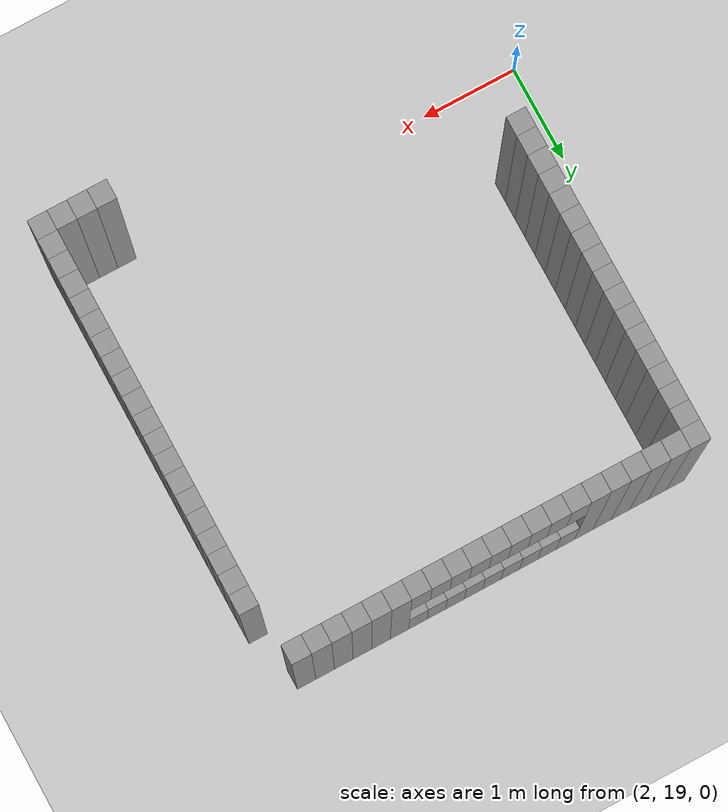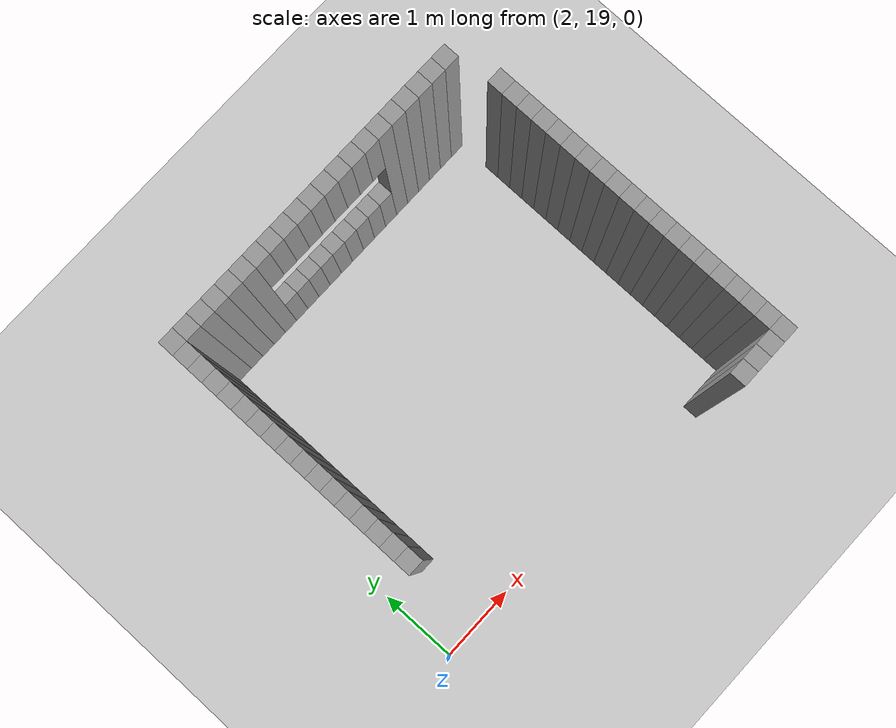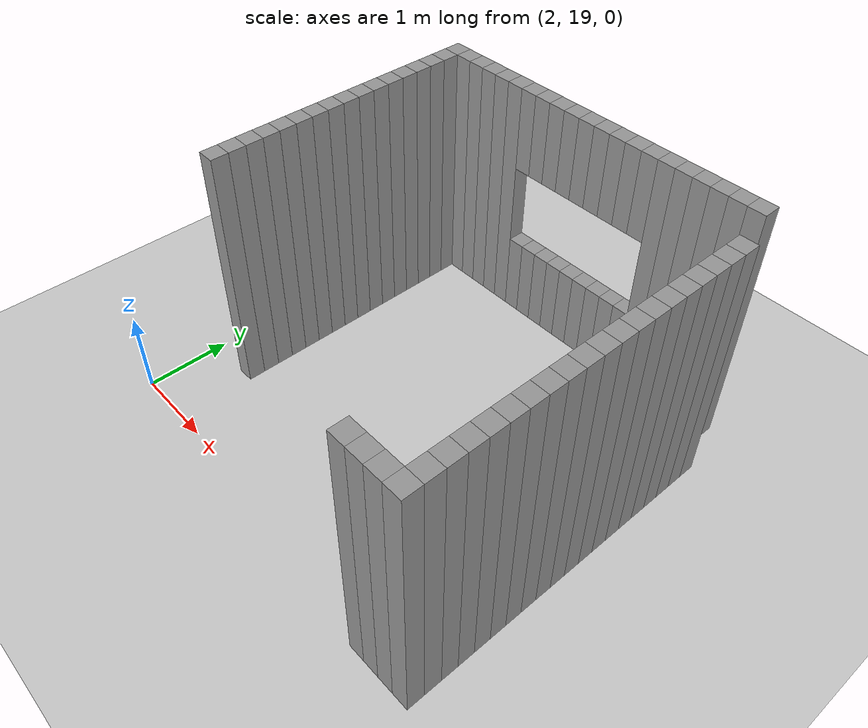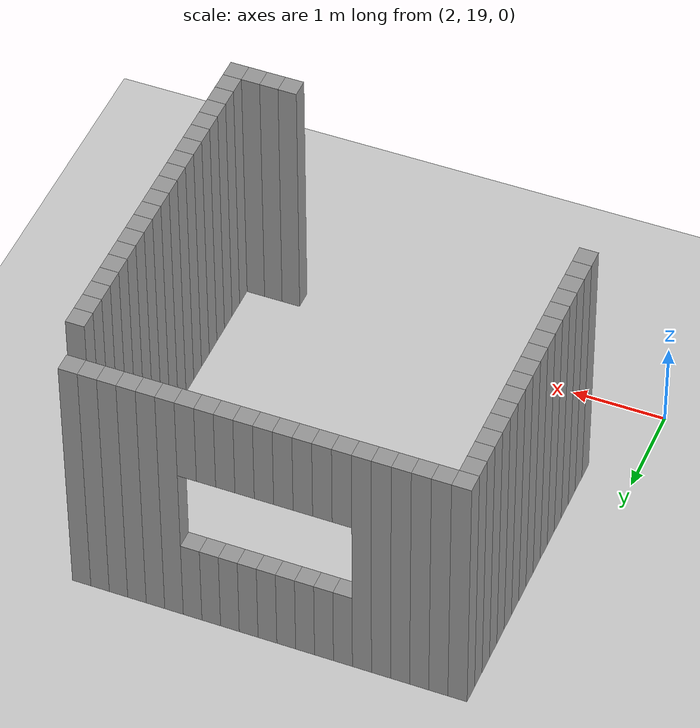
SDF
<sdf version="1.7">
 <world name="default">
  <model name="ground_plane">
   <static>1</static>
   <link name="link">
    <collision name="collision">
     <geometry><plane><normal>0 0 1</normal><size>100 100</size></plane></geometry>
     <surface>
      <contact><collide_bitmask>65535</collide_bitmask></contact>
      <friction><ode><mu>100</mu><mu2>50</mu2></ode></friction>
     </surface>
    </collision>
    <visual name="visual">
     <cast_shadows>0</cast_shadows>
     <geometry><plane><normal>0 0 1</normal><size>100 100</size></plane></geometry>
     <material>
      <script><uri>file://media/materials/scripts/gazebo.material</uri><name>Gazebo/Grey</name></script>
     </material>
    </visual>
   </link>
  </model>
  <model name="05222">
   <pose>-1 -1 0 0 -0 0</pose>
   <link name="Wall_908">
    <collision name="Wall_908_Collision">
     <geometry><box><size>0.2 0.2 3</size></box></geometry>
     <pose>0 0 1.5 0 -0 0</pose>
    </collision>
    <visual name="Wall_908_Visual">
     <pose>0 0 1.5 0 -0 0</pose>
     <geometry><box><size>0.2 0.2 3</size></box></geometry>
     <material>
      <script><uri>file://media/materials/scripts/gazebo.material</uri><name>Gazebo/Grey</name></script>
      <ambient>1 1 1 1</ambient>
     </material>
     <meta><layer>0</layer></meta>
    </visual>
    <pose>7.2 19.8 0 0 -0 0</pose>
   </link>
   <link name="Wall_909">
    <collision name="Wall_909_Collision">
     <geometry><box><size>0.2 0.2 3</size></box></geometry>
     <pose>0 0 1.5 0 -0 0</pose>
    </collision>
    <visual name="Wall_909_Visual">
     <pose>0 0 1.5 0 -0 0</pose>
     <geometry><box><size>0.2 0.2 3</size></box></geometry>
     <material>
      <script><uri>file://media/materials/scripts/gazebo.material</uri><name>Gazebo/Grey</name></script>
      <ambient>1 1 1 1</ambient>
     </material>
     <meta><layer>0</layer></meta>
    </visual>
    <pose>7.4 19.8 0 0 -0 0</pose>
   </link>
   <link name="Wall_910">
    <collision name="Wall_910_Collision">
     <geometry><box><size>0.2 0.2 3</size></box></geometry>
     <pose>0 0 1.5 0 -0 0</pose>
    </collision>
    <visual name="Wall_910_Visual">
     <pose>0 0 1.5 0 -0 0</pose>
     <geometry><box><size>0.2 0.2 3</size></box></geometry>
     <material>
      <script><uri>file://media/materials/scripts/gazebo.material</uri><name>Gazebo/Grey</name></script>
      <ambient>1 1 1 1</ambient>
     </material>
     <meta><layer>0</layer></meta>
    </visual>
    <pose>7.6000000000000005 19.8 0 0 -0 0</pose>
   </link>
   <link name="Wall_911">
    <collision name="Wall_911_Collision">
     <geometry><box><size>0.2 0.2 3</size></box></geometry>
     <pose>0 0 1.5 0 -0 0</pose>
    </collision>
    <visual name="Wall_911_Visual">
     <pose>0 0 1.5 0 -0 0</pose>
     <geometry><box><size>0.2 0.2 3</size></box></geometry>
     <material>
      <script><uri>file://media/materials/scripts/gazebo.material</uri><name>Gazebo/Grey</name></script>
      <ambient>1 1 1 1</ambient>
     </material>
     <meta><layer>0</layer></meta>
    </visual>
    <pose>7.800000000000001 19.8 0 0 -0 0</pose>
   </link>
   <link name="Wall_947">
    <collision name="Wall_947_Collision">
     <geometry><box><size>0.2 0.2 3</size></box></geometry>
     <pose>0 0 1.5 0 -0 0</pose>
    </collision>
    <visual name="Wall_947_Visual">
     <pose>0 0 1.5 0 -0 0</pose>
     <geometry><box><size>0.2 0.2 3</size></box></geometry>
     <material>
      <script><uri>file://media/materials/scripts/gazebo.material</uri><name>Gazebo/Grey</name></script>
      <ambient>1 1 1 1</ambient>
     </material>
     <meta><layer>0</layer></meta>
    </visual>
    <pose>7.800000000000001 20.0 0 0 -0 0</pose>
   </link>
   <link name="Wall_952">
    <collision name="Wall_952_Collision">
     <geometry><box><size>0.2 0.2 3</size></box></geometry>
     <pose>0 0 1.5 0 -0 0</pose>
    </collision>
    <visual name="Wall_952_Visual">
     <pose>0 0 1.5 0 -0 0</pose>
     <geometry><box><size>0.2 0.2 3</size></box></geometry>
     <material>
      <script><uri>file://media/materials/scripts/gazebo.material</uri><name>Gazebo/Grey</name></script>
      <ambient>1 1 1 1</ambient>
     </material>
     <meta><layer>0</layer></meta>
    </visual>
    <pose>7.800000000000001 20.200000000000003 0 0 -0 0</pose>
   </link>
   <link name="Wall_958">
    <collision name="Wall_958_Collision">
     <geometry><box><size>0.2 0.2 3</size></box></geometry>
     <pose>0 0 1.5 0 -0 0</pose>
    </collision>
    <visual name="Wall_958_Visual">
     <pose>0 0 1.5 0 -0 0</pose>
     <geometry><box><size>0.2 0.2 3</size></box></geometry>
     <material>
      <script><uri>file://media/materials/scripts/gazebo.material</uri><name>Gazebo/Grey</name></script>
      <ambient>1 1 1 1</ambient>
     </material>
     <meta><layer>0</layer></meta>
    </visual>
    <pose>7.800000000000001 20.400000000000002 0 0 -0 0</pose>
   </link>
   <link name="Wall_964">
    <collision name="Wall_964_Collision">
     <geometry><box><size>0.2 0.2 3</size></box></geometry>
     <pose>0 0 1.5 0 -0 0</pose>
    </collision>
    <visual name="Wall_964_Visual">
     <pose>0 0 1.5 0 -0 0</pose>
     <geometry><box><size>0.2 0.2 3</size></box></geometry>
     <material>
      <script><uri>file://media/materials/scripts/gazebo.material</uri><name>Gazebo/Grey</name></script>
      <ambient>1 1 1 1</ambient>
     </material>
     <meta><layer>0</layer></meta>
    </visual>
    <pose>7.800000000000001 20.6 0 0 -0 0</pose>
   </link>
   <link name="Wall_970">
    <collision name="Wall_970_Collision">
     <geometry><box><size>0.2 0.2 3</size></box></geometry>
     <pose>0 0 1.5 0 -0 0</pose>
    </collision>
    <visual name="Wall_970_Visual">
     <pose>0 0 1.5 0 -0 0</pose>
     <geometry><box><size>0.2 0.2 3</size></box></geometry>
     <material>
      <script><uri>file://media/materials/scripts/gazebo.material</uri><name>Gazebo/Grey</name></script>
      <ambient>1 1 1 1</ambient>
     </material>
     <meta><layer>0</layer></meta>
    </visual>
    <pose>7.800000000000001 20.8 0 0 -0 0</pose>
   </link>
   <link name="Wall_975">
    <collision name="Wall_975_Collision">
     <geometry><box><size>0.2 0.2 3</size></box></geometry>
     <pose>0 0 1.5 0 -0 0</pose>
    </collision>
    <visual name="Wall_975_Visual">
     <pose>0 0 1.5 0 -0 0</pose>
     <geometry><box><size>0.2 0.2 3</size></box></geometry>
     <material>
      <script><uri>file://media/materials/scripts/gazebo.material</uri><name>Gazebo/Grey</name></script>
      <ambient>1 1 1 1</ambient>
     </material>
     <meta><layer>0</layer></meta>
    </visual>
    <pose>3.6 21.0 0 0 -0 0</pose>
   </link>
   <link name="Wall_976">
    <collision name="Wall_976_Collision">
     <geometry><box><size>0.2 0.2 3</size></box></geometry>
     <pose>0 0 1.5 0 -0 0</pose>
    </collision>
    <visual name="Wall_976_Visual">
     <pose>0 0 1.5 0 -0 0</pose>
     <geometry><box><size>0.2 0.2 3</size></box></geometry>
     <material>
      <script><uri>file://media/materials/scripts/gazebo.material</uri><name>Gazebo/Grey</name></script>
      <ambient>1 1 1 1</ambient>
     </material>
     <meta><layer>0</layer></meta>
    </visual>
    <pose>7.800000000000001 21.0 0 0 -0 0</pose>
   </link>
   <link name="Wall_981">
    <collision name="Wall_981_Collision">
     <geometry><box><size>0.2 0.2 3</size></box></geometry>
     <pose>0 0 1.5 0 -0 0</pose>
    </collision>
    <visual name="Wall_981_Visual">
     <pose>0 0 1.5 0 -0 0</pose>
     <geometry><box><size>0.2 0.2 3</size></box></geometry>
     <material>
      <script><uri>file://media/materials/scripts/gazebo.material</uri><name>Gazebo/Grey</name></script>
      <ambient>1 1 1 1</ambient>
     </material>
     <meta><layer>0</layer></meta>
    </visual>
    <pose>3.6 21.200000000000003 0 0 -0 0</pose>
   </link>
   <link name="Wall_982">
    <collision name="Wall_982_Collision">
     <geometry><box><size>0.2 0.2 3</size></box></geometry>
     <pose>0 0 1.5 0 -0 0</pose>
    </collision>
    <visual name="Wall_982_Visual">
     <pose>0 0 1.5 0 -0 0</pose>
     <geometry><box><size>0.2 0.2 3</size></box></geometry>
     <material>
      <script><uri>file://media/materials/scripts/gazebo.material</uri><name>Gazebo/Grey</name></script>
      <ambient>1 1 1 1</ambient>
     </material>
     <meta><layer>0</layer></meta>
    </visual>
    <pose>7.800000000000001 21.200000000000003 0 0 -0 0</pose>
   </link>
   <link name="Wall_988">
    <collision name="Wall_988_Collision">
     <geometry><box><size>0.2 0.2 3</size></box></geometry>
     <pose>0 0 1.5 0 -0 0</pose>
    </collision>
    <visual name="Wall_988_Visual">
     <pose>0 0 1.5 0 -0 0</pose>
     <geometry><box><size>0.2 0.2 3</size></box></geometry>
     <material>
      <script><uri>file://media/materials/scripts/gazebo.material</uri><name>Gazebo/Grey</name></script>
      <ambient>1 1 1 1</ambient>
     </material>
     <meta><layer>0</layer></meta>
    </visual>
    <pose>3.6 21.400000000000002 0 0 -0 0</pose>
   </link>
   <link name="Wall_989">
    <collision name="Wall_989_Collision">
     <geometry><box><size>0.2 0.2 3</size></box></geometry>
     <pose>0 0 1.5 0 -0 0</pose>
    </collision>
    <visual name="Wall_989_Visual">
     <pose>0 0 1.5 0 -0 0</pose>
     <geometry><box><size>0.2 0.2 3</size></box></geometry>
     <material>
      <script><uri>file://media/materials/scripts/gazebo.material</uri><name>Gazebo/Grey</name></script>
      <ambient>1 1 1 1</ambient>
     </material>
     <meta><layer>0</layer></meta>
    </visual>
    <pose>7.800000000000001 21.400000000000002 0 0 -0 0</pose>
   </link>
   <link name="Wall_995">
    <collision name="Wall_995_Collision">
     <geometry><box><size>0.2 0.2 3</size></box></geometry>
     <pose>0 0 1.5 0 -0 0</pose>
    </collision>
    <visual name="Wall_995_Visual">
     <pose>0 0 1.5 0 -0 0</pose>
     <geometry><box><size>0.2 0.2 3</size></box></geometry>
     <material>
      <script><uri>file://media/materials/scripts/gazebo.material</uri><name>Gazebo/Grey</name></script>
      <ambient>1 1 1 1</ambient>
     </material>
     <meta><layer>0</layer></meta>
    </visual>
    <pose>3.6 21.6 0 0 -0 0</pose>
   </link>
   <link name="Wall_996">
    <collision name="Wall_996_Collision">
     <geometry><box><size>0.2 0.2 3</size></box></geometry>
     <pose>0 0 1.5 0 -0 0</pose>
    </collision>
    <visual name="Wall_996_Visual">
     <pose>0 0 1.5 0 -0 0</pose>
     <geometry><box><size>0.2 0.2 3</size></box></geometry>
     <material>
      <script><uri>file://media/materials/scripts/gazebo.material</uri><name>Gazebo/Grey</name></script>
      <ambient>1 1 1 1</ambient>
     </material>
     <meta><layer>0</layer></meta>
    </visual>
    <pose>7.800000000000001 21.6 0 0 -0 0</pose>
   </link>
   <link name="Wall_1001">
    <collision name="Wall_1001_Collision">
     <geometry><box><size>0.2 0.2 3</size></box></geometry>
     <pose>0 0 1.5 0 -0 0</pose>
    </collision>
    <visual name="Wall_1001_Visual">
     <pose>0 0 1.5 0 -0 0</pose>
     <geometry><box><size>0.2 0.2 3</size></box></geometry>
     <material>
      <script><uri>file://media/materials/scripts/gazebo.material</uri><name>Gazebo/Grey</name></script>
      <ambient>1 1 1 1</ambient>
     </material>
     <meta><layer>0</layer></meta>
    </visual>
    <pose>3.6 21.8 0 0 -0 0</pose>
   </link>
   <link name="Wall_1002">
    <collision name="Wall_1002_Collision">
     <geometry><box><size>0.2 0.2 3</size></box></geometry>
     <pose>0 0 1.5 0 -0 0</pose>
    </collision>
    <visual name="Wall_1002_Visual">
     <pose>0 0 1.5 0 -0 0</pose>
     <geometry><box><size>0.2 0.2 3</size></box></geometry>
     <material>
      <script><uri>file://media/materials/scripts/gazebo.material</uri><name>Gazebo/Grey</name></script>
      <ambient>1 1 1 1</ambient>
     </material>
     <meta><layer>0</layer></meta>
    </visual>
    <pose>7.800000000000001 21.8 0 0 -0 0</pose>
   </link>
   <link name="Wall_1007">
    <collision name="Wall_1007_Collision">
     <geometry><box><size>0.2 0.2 3</size></box></geometry>
     <pose>0 0 1.5 0 -0 0</pose>
    </collision>
    <visual name="Wall_1007_Visual">
     <pose>0 0 1.5 0 -0 0</pose>
     <geometry><box><size>0.2 0.2 3</size></box></geometry>
     <material>
      <script><uri>file://media/materials/scripts/gazebo.material</uri><name>Gazebo/Grey</name></script>
      <ambient>1 1 1 1</ambient>
     </material>
     <meta><layer>0</layer></meta>
    </visual>
    <pose>3.6 22.0 0 0 -0 0</pose>
   </link>
   <link name="Wall_1008">
    <collision name="Wall_1008_Collision">
     <geometry><box><size>0.2 0.2 3</size></box></geometry>
     <pose>0 0 1.5 0 -0 0</pose>
    </collision>
    <visual name="Wall_1008_Visual">
     <pose>0 0 1.5 0 -0 0</pose>
     <geometry><box><size>0.2 0.2 3</size></box></geometry>
     <material>
      <script><uri>file://media/materials/scripts/gazebo.material</uri><name>Gazebo/Grey</name></script>
      <ambient>1 1 1 1</ambient>
     </material>
     <meta><layer>0</layer></meta>
    </visual>
    <pose>7.800000000000001 22.0 0 0 -0 0</pose>
   </link>
   <link name="Wall_1013">
    <collision name="Wall_1013_Collision">
     <geometry><box><size>0.2 0.2 3</size></box></geometry>
     <pose>0 0 1.5 0 -0 0</pose>
    </collision>
    <visual name="Wall_1013_Visual">
     <pose>0 0 1.5 0 -0 0</pose>
     <geometry><box><size>0.2 0.2 3</size></box></geometry>
     <material>
      <script><uri>file://media/materials/scripts/gazebo.material</uri><name>Gazebo/Grey</name></script>
      <ambient>1 1 1 1</ambient>
     </material>
     <meta><layer>0</layer></meta>
    </visual>
    <pose>3.6 22.200000000000003 0 0 -0 0</pose>
   </link>
   <link name="Wall_1014">
    <collision name="Wall_1014_Collision">
     <geometry><box><size>0.2 0.2 3</size></box></geometry>
     <pose>0 0 1.5 0 -0 0</pose>
    </collision>
    <visual name="Wall_1014_Visual">
     <pose>0 0 1.5 0 -0 0</pose>
     <geometry><box><size>0.2 0.2 3</size></box></geometry>
     <material>
      <script><uri>file://media/materials/scripts/gazebo.material</uri><name>Gazebo/Grey</name></script>
      <ambient>1 1 1 1</ambient>
     </material>
     <meta><layer>0</layer></meta>
    </visual>
    <pose>7.800000000000001 22.200000000000003 0 0 -0 0</pose>
   </link>
   <link name="Wall_1019">
    <collision name="Wall_1019_Collision">
     <geometry><box><size>0.2 0.2 3</size></box></geometry>
     <pose>0 0 1.5 0 -0 0</pose>
    </collision>
    <visual name="Wall_1019_Visual">
     <pose>0 0 1.5 0 -0 0</pose>
     <geometry><box><size>0.2 0.2 3</size></box></geometry>
     <material>
      <script><uri>file://media/materials/scripts/gazebo.material</uri><name>Gazebo/Grey</name></script>
      <ambient>1 1 1 1</ambient>
     </material>
     <meta><layer>0</layer></meta>
    </visual>
    <pose>3.6 22.400000000000002 0 0 -0 0</pose>
   </link>
   <link name="Wall_1020">
    <collision name="Wall_1020_Collision">
     <geometry><box><size>0.2 0.2 3</size></box></geometry>
     <pose>0 0 1.5 0 -0 0</pose>
    </collision>
    <visual name="Wall_1020_Visual">
     <pose>0 0 1.5 0 -0 0</pose>
     <geometry><box><size>0.2 0.2 3</size></box></geometry>
     <material>
      <script><uri>file://media/materials/scripts/gazebo.material</uri><name>Gazebo/Grey</name></script>
      <ambient>1 1 1 1</ambient>
     </material>
     <meta><layer>0</layer></meta>
    </visual>
    <pose>7.800000000000001 22.400000000000002 0 0 -0 0</pose>
   </link>
   <link name="Wall_1025">
    <collision name="Wall_1025_Collision">
     <geometry><box><size>0.2 0.2 3</size></box></geometry>
     <pose>0 0 1.5 0 -0 0</pose>
    </collision>
    <visual name="Wall_1025_Visual">
     <pose>0 0 1.5 0 -0 0</pose>
     <geometry><box><size>0.2 0.2 3</size></box></geometry>
     <material>
      <script><uri>file://media/materials/scripts/gazebo.material</uri><name>Gazebo/Grey</name></script>
      <ambient>1 1 1 1</ambient>
     </material>
     <meta><layer>0</layer></meta>
    </visual>
    <pose>3.6 22.6 0 0 -0 0</pose>
   </link>
   <link name="Wall_1026">
    <collision name="Wall_1026_Collision">
     <geometry><box><size>0.2 0.2 3</size></box></geometry>
     <pose>0 0 1.5 0 -0 0</pose>
    </collision>
    <visual name="Wall_1026_Visual">
     <pose>0 0 1.5 0 -0 0</pose>
     <geometry><box><size>0.2 0.2 3</size></box></geometry>
     <material>
      <script><uri>file://media/materials/scripts/gazebo.material</uri><name>Gazebo/Grey</name></script>
      <ambient>1 1 1 1</ambient>
     </material>
     <meta><layer>0</layer></meta>
    </visual>
    <pose>7.800000000000001 22.6 0 0 -0 0</pose>
   </link>
   <link name="Wall_1031">
    <collision name="Wall_1031_Collision">
     <geometry><box><size>0.2 0.2 3</size></box></geometry>
     <pose>0 0 1.5 0 -0 0</pose>
    </collision>
    <visual name="Wall_1031_Visual">
     <pose>0 0 1.5 0 -0 0</pose>
     <geometry><box><size>0.2 0.2 3</size></box></geometry>
     <material>
      <script><uri>file://media/materials/scripts/gazebo.material</uri><name>Gazebo/Grey</name></script>
      <ambient>1 1 1 1</ambient>
     </material>
     <meta><layer>0</layer></meta>
    </visual>
    <pose>3.6 22.8 0 0 -0 0</pose>
   </link>
   <link name="Wall_1032">
    <collision name="Wall_1032_Collision">
     <geometry><box><size>0.2 0.2 3</size></box></geometry>
     <pose>0 0 1.5 0 -0 0</pose>
    </collision>
    <visual name="Wall_1032_Visual">
     <pose>0 0 1.5 0 -0 0</pose>
     <geometry><box><size>0.2 0.2 3</size></box></geometry>
     <material>
      <script><uri>file://media/materials/scripts/gazebo.material</uri><name>Gazebo/Grey</name></script>
      <ambient>1 1 1 1</ambient>
     </material>
     <meta><layer>0</layer></meta>
    </visual>
    <pose>7.800000000000001 22.8 0 0 -0 0</pose>
   </link>
   <link name="Wall_1037">
    <collision name="Wall_1037_Collision">
     <geometry><box><size>0.2 0.2 3</size></box></geometry>
     <pose>0 0 1.5 0 -0 0</pose>
    </collision>
    <visual name="Wall_1037_Visual">
     <pose>0 0 1.5 0 -0 0</pose>
     <geometry><box><size>0.2 0.2 3</size></box></geometry>
     <material>
      <script><uri>file://media/materials/scripts/gazebo.material</uri><name>Gazebo/Grey</name></script>
      <ambient>1 1 1 1</ambient>
     </material>
     <meta><layer>0</layer></meta>
    </visual>
    <pose>3.6 23.0 0 0 -0 0</pose>
   </link>
   <link name="Wall_1038">
    <collision name="Wall_1038_Collision">
     <geometry><box><size>0.2 0.2 3</size></box></geometry>
     <pose>0 0 1.5 0 -0 0</pose>
    </collision>
    <visual name="Wall_1038_Visual">
     <pose>0 0 1.5 0 -0 0</pose>
     <geometry><box><size>0.2 0.2 3</size></box></geometry>
     <material>
      <script><uri>file://media/materials/scripts/gazebo.material</uri><name>Gazebo/Grey</name></script>
      <ambient>1 1 1 1</ambient>
     </material>
     <meta><layer>0</layer></meta>
    </visual>
    <pose>7.800000000000001 23.0 0 0 -0 0</pose>
   </link>
   <link name="Wall_1043">
    <collision name="Wall_1043_Collision">
     <geometry><box><size>0.2 0.2 3</size></box></geometry>
     <pose>0 0 1.5 0 -0 0</pose>
    </collision>
    <visual name="Wall_1043_Visual">
     <pose>0 0 1.5 0 -0 0</pose>
     <geometry><box><size>0.2 0.2 3</size></box></geometry>
     <material>
      <script><uri>file://media/materials/scripts/gazebo.material</uri><name>Gazebo/Grey</name></script>
      <ambient>1 1 1 1</ambient>
     </material>
     <meta><layer>0</layer></meta>
    </visual>
    <pose>3.6 23.200000000000003 0 0 -0 0</pose>
   </link>
   <link name="Wall_1044">
    <collision name="Wall_1044_Collision">
     <geometry><box><size>0.2 0.2 3</size></box></geometry>
     <pose>0 0 1.5 0 -0 0</pose>
    </collision>
    <visual name="Wall_1044_Visual">
     <pose>0 0 1.5 0 -0 0</pose>
     <geometry><box><size>0.2 0.2 3</size></box></geometry>
     <material>
      <script><uri>file://media/materials/scripts/gazebo.material</uri><name>Gazebo/Grey</name></script>
      <ambient>1 1 1 1</ambient>
     </material>
     <meta><layer>0</layer></meta>
    </visual>
    <pose>7.800000000000001 23.200000000000003 0 0 -0 0</pose>
   </link>
   <link name="Wall_1048">
    <collision name="Wall_1048_Collision">
     <geometry><box><size>0.2 0.2 3</size></box></geometry>
     <pose>0 0 1.5 0 -0 0</pose>
    </collision>
    <visual name="Wall_1048_Visual">
     <pose>0 0 1.5 0 -0 0</pose>
     <geometry><box><size>0.2 0.2 3</size></box></geometry>
     <material>
      <script><uri>file://media/materials/scripts/gazebo.material</uri><name>Gazebo/Grey</name></script>
      <ambient>1 1 1 1</ambient>
     </material>
     <meta><layer>0</layer></meta>
    </visual>
    <pose>3.6 23.400000000000002 0 0 -0 0</pose>
   </link>
   <link name="Wall_1049">
    <collision name="Wall_1049_Collision">
     <geometry><box><size>0.2 0.2 3</size></box></geometry>
     <pose>0 0 1.5 0 -0 0</pose>
    </collision>
    <visual name="Wall_1049_Visual">
     <pose>0 0 1.5 0 -0 0</pose>
     <geometry><box><size>0.2 0.2 3</size></box></geometry>
     <material>
      <script><uri>file://media/materials/scripts/gazebo.material</uri><name>Gazebo/Grey</name></script>
      <ambient>1 1 1 1</ambient>
     </material>
     <meta><layer>0</layer></meta>
    </visual>
    <pose>7.800000000000001 23.400000000000002 0 0 -0 0</pose>
   </link>
   <link name="Wall_1053">
    <collision name="Wall_1053_Collision">
     <geometry><box><size>0.2 0.2 3</size></box></geometry>
     <pose>0 0 1.5 0 -0 0</pose>
    </collision>
    <visual name="Wall_1053_Visual">
     <pose>0 0 1.5 0 -0 0</pose>
     <geometry><box><size>0.2 0.2 3</size></box></geometry>
     <material>
      <script><uri>file://media/materials/scripts/gazebo.material</uri><name>Gazebo/Grey</name></script>
      <ambient>1 1 1 1</ambient>
     </material>
     <meta><layer>0</layer></meta>
    </visual>
    <pose>3.6 23.6 0 0 -0 0</pose>
   </link>
   <link name="Wall_1054">
    <collision name="Wall_1054_Collision">
     <geometry><box><size>0.2 0.2 3</size></box></geometry>
     <pose>0 0 1.5 0 -0 0</pose>
    </collision>
    <visual name="Wall_1054_Visual">
     <pose>0 0 1.5 0 -0 0</pose>
     <geometry><box><size>0.2 0.2 3</size></box></geometry>
     <material>
      <script><uri>file://media/materials/scripts/gazebo.material</uri><name>Gazebo/Grey</name></script>
      <ambient>1 1 1 1</ambient>
     </material>
     <meta><layer>0</layer></meta>
    </visual>
    <pose>7.800000000000001 23.6 0 0 -0 0</pose>
   </link>
   <link name="Wall_1058">
    <collision name="Wall_1058_Collision">
     <geometry><box><size>0.2 0.2 3</size></box></geometry>
     <pose>0 0 1.5 0 -0 0</pose>
    </collision>
    <visual name="Wall_1058_Visual">
     <pose>0 0 1.5 0 -0 0</pose>
     <geometry><box><size>0.2 0.2 3</size></box></geometry>
     <material>
      <script><uri>file://media/materials/scripts/gazebo.material</uri><name>Gazebo/Grey</name></script>
      <ambient>1 1 1 1</ambient>
     </material>
     <meta><layer>0</layer></meta>
    </visual>
    <pose>3.6 23.8 0 0 -0 0</pose>
   </link>
   <link name="Wall_1063">
    <collision name="Wall_1063_Collision">
     <geometry><box><size>0.2 0.2 3</size></box></geometry>
     <pose>0 0 1.5 0 -0 0</pose>
    </collision>
    <visual name="Wall_1063_Visual">
     <pose>0 0 1.5 0 -0 0</pose>
     <geometry><box><size>0.2 0.2 3</size></box></geometry>
     <material>
      <script><uri>file://media/materials/scripts/gazebo.material</uri><name>Gazebo/Grey</name></script>
      <ambient>1 1 1 1</ambient>
     </material>
     <meta><layer>0</layer></meta>
    </visual>
    <pose>3.6 24.0 0 0 -0 0</pose>
   </link>
   <link name="Wall_1095">
    <collision name="Wall_1095_Collision">
     <geometry><box><size>0.2 0.2 3</size></box></geometry>
     <pose>0 0 1.5 0 -0 0</pose>
    </collision>
    <visual name="Wall_1095_Visual">
     <pose>0 0 1.5 0 -0 0</pose>
     <geometry><box><size>0.2 0.2 3</size></box></geometry>
     <material>
      <script><uri>file://media/materials/scripts/gazebo.material</uri><name>Gazebo/Grey</name></script>
      <ambient>1 1 1 1</ambient>
     </material>
     <meta><layer>0</layer></meta>
    </visual>
    <pose>3.6 24.200000000000003 0 0 -0 0</pose>
   </link>
   <link name="Wall_1096">
    <collision name="Wall_1096_Collision">
     <geometry><box><size>0.2 0.2 3</size></box></geometry>
     <pose>0 0 1.5 0 -0 0</pose>
    </collision>
    <visual name="Wall_1096_Visual">
     <pose>0 0 1.5 0 -0 0</pose>
     <geometry><box><size>0.2 0.2 3</size></box></geometry>
     <material>
      <script><uri>file://media/materials/scripts/gazebo.material</uri><name>Gazebo/Grey</name></script>
      <ambient>1 1 1 1</ambient>
     </material>
     <meta><layer>0</layer></meta>
    </visual>
    <pose>3.8000000000000003 24.200000000000003 0 0 -0 0</pose>
   </link>
   <link name="Wall_1097">
    <collision name="Wall_1097_Collision">
     <geometry><box><size>0.2 0.2 3</size></box></geometry>
     <pose>0 0 1.5 0 -0 0</pose>
    </collision>
    <visual name="Wall_1097_Visual">
     <pose>0 0 1.5 0 -0 0</pose>
     <geometry><box><size>0.2 0.2 3</size></box></geometry>
     <material>
      <script><uri>file://media/materials/scripts/gazebo.material</uri><name>Gazebo/Grey</name></script>
      <ambient>1 1 1 1</ambient>
     </material>
     <meta><layer>0</layer></meta>
    </visual>
    <pose>4.0 24.200000000000003 0 0 -0 0</pose>
   </link>
   <link name="Wall_1098">
    <collision name="Wall_1098_Collision">
     <geometry><box><size>0.2 0.2 3</size></box></geometry>
     <pose>0 0 1.5 0 -0 0</pose>
    </collision>
    <visual name="Wall_1098_Visual">
     <pose>0 0 1.5 0 -0 0</pose>
     <geometry><box><size>0.2 0.2 3</size></box></geometry>
     <material>
      <script><uri>file://media/materials/scripts/gazebo.material</uri><name>Gazebo/Grey</name></script>
      <ambient>1 1 1 1</ambient>
     </material>
     <meta><layer>0</layer></meta>
    </visual>
    <pose>4.2 24.200000000000003 0 0 -0 0</pose>
   </link>
   <link name="Wall_1099">
    <collision name="Wall_1099_Collision">
     <geometry><box><size>0.2 0.2 3</size></box></geometry>
     <pose>0 0 1.5 0 -0 0</pose>
    </collision>
    <visual name="Wall_1099_Visual">
     <pose>0 0 1.5 0 -0 0</pose>
     <geometry><box><size>0.2 0.2 3</size></box></geometry>
     <material>
      <script><uri>file://media/materials/scripts/gazebo.material</uri><name>Gazebo/Grey</name></script>
      <ambient>1 1 1 1</ambient>
     </material>
     <meta><layer>0</layer></meta>
    </visual>
    <pose>4.4 24.200000000000003 0 0 -0 0</pose>
   </link>
   <link name="Wall_1100">
    <collision name="Wall_1100_Collision">
     <geometry><box><size>0.2 0.2 3</size></box></geometry>
     <pose>0 0 1.5 0 -0 0</pose>
    </collision>
    <visual name="Wall_1100_Visual">
     <pose>0 0 1.5 0 -0 0</pose>
     <geometry><box><size>0.2 0.2 3</size></box></geometry>
     <material>
      <script><uri>file://media/materials/scripts/gazebo.material</uri><name>Gazebo/Grey</name></script>
      <ambient>1 1 1 1</ambient>
     </material>
     <meta><layer>0</layer></meta>
    </visual>
    <pose>4.6000000000000005 24.200000000000003 0 0 -0 0</pose>
   </link>
   <link name="Wall_1101">
    <collision name="Wall_1101_Collision">
     <geometry><box><size>0.2 0.2 1.0</size></box></geometry>
     <pose>0 0 0.5 0 -0 0</pose>
    </collision>
    <visual name="Wall_1101_Visual">
     <pose>0 0 0.5 0 -0 0</pose>
     <geometry><box><size>0.2 0.2 1.0</size></box></geometry>
     <material>
      <script><uri>file://media/materials/scripts/gazebo.material</uri><name>Gazebo/Grey</name></script>
      <ambient>1 1 1 1</ambient>
     </material>
     <meta><layer>0</layer></meta>
    </visual>
    <pose>4.800000000000001 24.200000000000003 0 0 -0 0</pose>
   </link>
   <link name="Wall_1102">
    <collision name="Wall_1102_Collision">
     <geometry><box><size>0.2 0.2 1.0</size></box></geometry>
     <pose>0 0 2.5 0 -0 0</pose>
    </collision>
    <visual name="Wall_1102_Visual">
     <pose>0 0 2.5 0 -0 0</pose>
     <geometry><box><size>0.2 0.2 1.0</size></box></geometry>
     <material>
      <script><uri>file://media/materials/scripts/gazebo.material</uri><name>Gazebo/Grey</name></script>
      <ambient>1 1 1 1</ambient>
     </material>
     <meta><layer>0</layer></meta>
    </visual>
    <pose>4.800000000000001 24.200000000000003 0 0 -0 0</pose>
   </link>
   <link name="Window_1101">
    <collision name="Window_1101_Collision">
     <geometry><box><size>0.2 0.2 1.0</size></box></geometry>
     <pose>0 0 1.5 0 -0 0</pose>
    </collision>
    <visual name="Wall_1102_Visual">
     <pose>0 0 2.5 0 -0 0</pose>
     <geometry><box><size>0.2 0.2 1.0</size></box></geometry>
     <material>
      <script><uri>file://media/materials/scripts/gazebo.material</uri><name>Gazebo/Grey</name></script>
      <ambient>1 1 1 1</ambient>
     </material>
     <meta><layer>0</layer></meta>
    </visual>
    <pose>4.800000000000001 24.200000000000003 0 0 -0 0</pose>
   </link>
   <link name="Wall_1103">
    <collision name="Wall_1103_Collision">
     <geometry><box><size>0.2 0.2 1.0</size></box></geometry>
     <pose>0 0 0.5 0 -0 0</pose>
    </collision>
    <visual name="Wall_1103_Visual">
     <pose>0 0 0.5 0 -0 0</pose>
     <geometry><box><size>0.2 0.2 1.0</size></box></geometry>
     <material>
      <script><uri>file://media/materials/scripts/gazebo.material</uri><name>Gazebo/Grey</name></script>
      <ambient>1 1 1 1</ambient>
     </material>
     <meta><layer>0</layer></meta>
    </visual>
    <pose>5.0 24.200000000000003 0 0 -0 0</pose>
   </link>
   <link name="Wall_1104">
    <collision name="Wall_1104_Collision">
     <geometry><box><size>0.2 0.2 1.0</size></box></geometry>
     <pose>0 0 2.5 0 -0 0</pose>
    </collision>
    <visual name="Wall_1104_Visual">
     <pose>0 0 2.5 0 -0 0</pose>
     <geometry><box><size>0.2 0.2 1.0</size></box></geometry>
     <material>
      <script><uri>file://media/materials/scripts/gazebo.material</uri><name>Gazebo/Grey</name></script>
      <ambient>1 1 1 1</ambient>
     </material>
     <meta><layer>0</layer></meta>
    </visual>
    <pose>5.0 24.200000000000003 0 0 -0 0</pose>
   </link>
   <link name="Window_1103">
    <collision name="Window_1103_Collision">
     <geometry><box><size>0.2 0.2 1.0</size></box></geometry>
     <pose>0 0 1.5 0 -0 0</pose>
    </collision>
    <visual name="Wall_1104_Visual">
     <pose>0 0 2.5 0 -0 0</pose>
     <geometry><box><size>0.2 0.2 1.0</size></box></geometry>
     <material>
      <script><uri>file://media/materials/scripts/gazebo.material</uri><name>Gazebo/Grey</name></script>
      <ambient>1 1 1 1</ambient>
     </material>
     <meta><layer>0</layer></meta>
    </visual>
    <pose>5.0 24.200000000000003 0 0 -0 0</pose>
   </link>
   <link name="Wall_1105">
    <collision name="Wall_1105_Collision">
     <geometry><box><size>0.2 0.2 1.0</size></box></geometry>
     <pose>0 0 0.5 0 -0 0</pose>
    </collision>
    <visual name="Wall_1105_Visual">
     <pose>0 0 0.5 0 -0 0</pose>
     <geometry><box><size>0.2 0.2 1.0</size></box></geometry>
     <material>
      <script><uri>file://media/materials/scripts/gazebo.material</uri><name>Gazebo/Grey</name></script>
      <ambient>1 1 1 1</ambient>
     </material>
     <meta><layer>0</layer></meta>
    </visual>
    <pose>5.2 24.200000000000003 0 0 -0 0</pose>
   </link>
   <link name="Wall_1106">
    <collision name="Wall_1106_Collision">
     <geometry><box><size>0.2 0.2 1.0</size></box></geometry>
     <pose>0 0 2.5 0 -0 0</pose>
    </collision>
    <visual name="Wall_1106_Visual">
     <pose>0 0 2.5 0 -0 0</pose>
     <geometry><box><size>0.2 0.2 1.0</size></box></geometry>
     <material>
      <script><uri>file://media/materials/scripts/gazebo.material</uri><name>Gazebo/Grey</name></script>
      <ambient>1 1 1 1</ambient>
     </material>
     <meta><layer>0</layer></meta>
    </visual>
    <pose>5.2 24.200000000000003 0 0 -0 0</pose>
   </link>
   <link name="Window_1105">
    <collision name="Window_1105_Collision">
     <geometry><box><size>0.2 0.2 1.0</size></box></geometry>
     <pose>0 0 1.5 0 -0 0</pose>
    </collision>
    <visual name="Wall_1106_Visual">
     <pose>0 0 2.5 0 -0 0</pose>
     <geometry><box><size>0.2 0.2 1.0</size></box></geometry>
     <material>
      <script><uri>file://media/materials/scripts/gazebo.material</uri><name>Gazebo/Grey</name></script>
      <ambient>1 1 1 1</ambient>
     </material>
     <meta><layer>0</layer></meta>
    </visual>
    <pose>5.2 24.200000000000003 0 0 -0 0</pose>
   </link>
   <link name="Wall_1107">
    <collision name="Wall_1107_Collision">
     <geometry><box><size>0.2 0.2 1.0</size></box></geometry>
     <pose>0 0 0.5 0 -0 0</pose>
    </collision>
    <visual name="Wall_1107_Visual">
     <pose>0 0 0.5 0 -0 0</pose>
     <geometry><box><size>0.2 0.2 1.0</size></box></geometry>
     <material>
      <script><uri>file://media/materials/scripts/gazebo.material</uri><name>Gazebo/Grey</name></script>
      <ambient>1 1 1 1</ambient>
     </material>
     <meta><layer>0</layer></meta>
    </visual>
    <pose>5.4 24.200000000000003 0 0 -0 0</pose>
   </link>
   <link name="Wall_1108">
    <collision name="Wall_1108_Collision">
     <geometry><box><size>0.2 0.2 1.0</size></box></geometry>
     <pose>0 0 2.5 0 -0 0</pose>
    </collision>
    <visual name="Wall_1108_Visual">
     <pose>0 0 2.5 0 -0 0</pose>
     <geometry><box><size>0.2 0.2 1.0</size></box></geometry>
     <material>
      <script><uri>file://media/materials/scripts/gazebo.material</uri><name>Gazebo/Grey</name></script>
      <ambient>1 1 1 1</ambient>
     </material>
     <meta><layer>0</layer></meta>
    </visual>
    <pose>5.4 24.200000000000003 0 0 -0 0</pose>
   </link>
   <link name="Window_1107">
    <collision name="Window_1107_Collision">
     <geometry><box><size>0.2 0.2 1.0</size></box></geometry>
     <pose>0 0 1.5 0 -0 0</pose>
    </collision>
    <visual name="Wall_1108_Visual">
     <pose>0 0 2.5 0 -0 0</pose>
     <geometry><box><size>0.2 0.2 1.0</size></box></geometry>
     <material>
      <script><uri>file://media/materials/scripts/gazebo.material</uri><name>Gazebo/Grey</name></script>
      <ambient>1 1 1 1</ambient>
     </material>
     <meta><layer>0</layer></meta>
    </visual>
    <pose>5.4 24.200000000000003 0 0 -0 0</pose>
   </link>
   <link name="Wall_1109">
    <collision name="Wall_1109_Collision">
     <geometry><box><size>0.2 0.2 1.0</size></box></geometry>
     <pose>0 0 0.5 0 -0 0</pose>
    </collision>
    <visual name="Wall_1109_Visual">
     <pose>0 0 0.5 0 -0 0</pose>
     <geometry><box><size>0.2 0.2 1.0</size></box></geometry>
     <material>
      <script><uri>file://media/materials/scripts/gazebo.material</uri><name>Gazebo/Grey</name></script>
      <ambient>1 1 1 1</ambient>
     </material>
     <meta><layer>0</layer></meta>
    </visual>
    <pose>5.6000000000000005 24.200000000000003 0 0 -0 0</pose>
   </link>
   <link name="Wall_1110">
    <collision name="Wall_1110_Collision">
     <geometry><box><size>0.2 0.2 1.0</size></box></geometry>
     <pose>0 0 2.5 0 -0 0</pose>
    </collision>
    <visual name="Wall_1110_Visual">
     <pose>0 0 2.5 0 -0 0</pose>
     <geometry><box><size>0.2 0.2 1.0</size></box></geometry>
     <material>
      <script><uri>file://media/materials/scripts/gazebo.material</uri><name>Gazebo/Grey</name></script>
      <ambient>1 1 1 1</ambient>
     </material>
     <meta><layer>0</layer></meta>
    </visual>
    <pose>5.6000000000000005 24.200000000000003 0 0 -0 0</pose>
   </link>
   <link name="Window_1109">
    <collision name="Window_1109_Collision">
     <geometry><box><size>0.2 0.2 1.0</size></box></geometry>
     <pose>0 0 1.5 0 -0 0</pose>
    </collision>
    <visual name="Wall_1110_Visual">
     <pose>0 0 2.5 0 -0 0</pose>
     <geometry><box><size>0.2 0.2 1.0</size></box></geometry>
     <material>
      <script><uri>file://media/materials/scripts/gazebo.material</uri><name>Gazebo/Grey</name></script>
      <ambient>1 1 1 1</ambient>
     </material>
     <meta><layer>0</layer></meta>
    </visual>
    <pose>5.6000000000000005 24.200000000000003 0 0 -0 0</pose>
   </link>
   <link name="Wall_1111">
    <collision name="Wall_1111_Collision">
     <geometry><box><size>0.2 0.2 1.0</size></box></geometry>
     <pose>0 0 0.5 0 -0 0</pose>
    </collision>
    <visual name="Wall_1111_Visual">
     <pose>0 0 0.5 0 -0 0</pose>
     <geometry><box><size>0.2 0.2 1.0</size></box></geometry>
     <material>
      <script><uri>file://media/materials/scripts/gazebo.material</uri><name>Gazebo/Grey</name></script>
      <ambient>1 1 1 1</ambient>
     </material>
     <meta><layer>0</layer></meta>
    </visual>
    <pose>5.800000000000001 24.200000000000003 0 0 -0 0</pose>
   </link>
   <link name="Wall_1112">
    <collision name="Wall_1112_Collision">
     <geometry><box><size>0.2 0.2 1.0</size></box></geometry>
     <pose>0 0 2.5 0 -0 0</pose>
    </collision>
    <visual name="Wall_1112_Visual">
     <pose>0 0 2.5 0 -0 0</pose>
     <geometry><box><size>0.2 0.2 1.0</size></box></geometry>
     <material>
      <script><uri>file://media/materials/scripts/gazebo.material</uri><name>Gazebo/Grey</name></script>
      <ambient>1 1 1 1</ambient>
     </material>
     <meta><layer>0</layer></meta>
    </visual>
    <pose>5.800000000000001 24.200000000000003 0 0 -0 0</pose>
   </link>
   <link name="Window_1111">
    <collision name="Window_1111_Collision">
     <geometry><box><size>0.2 0.2 1.0</size></box></geometry>
     <pose>0 0 1.5 0 -0 0</pose>
    </collision>
    <visual name="Wall_1112_Visual">
     <pose>0 0 2.5 0 -0 0</pose>
     <geometry><box><size>0.2 0.2 1.0</size></box></geometry>
     <material>
      <script><uri>file://media/materials/scripts/gazebo.material</uri><name>Gazebo/Grey</name></script>
      <ambient>1 1 1 1</ambient>
     </material>
     <meta><layer>0</layer></meta>
    </visual>
    <pose>5.800000000000001 24.200000000000003 0 0 -0 0</pose>
   </link>
   <link name="Wall_1113">
    <collision name="Wall_1113_Collision">
     <geometry><box><size>0.2 0.2 1.0</size></box></geometry>
     <pose>0 0 0.5 0 -0 0</pose>
    </collision>
    <visual name="Wall_1113_Visual">
     <pose>0 0 0.5 0 -0 0</pose>
     <geometry><box><size>0.2 0.2 1.0</size></box></geometry>
     <material>
      <script><uri>file://media/materials/scripts/gazebo.material</uri><name>Gazebo/Grey</name></script>
      <ambient>1 1 1 1</ambient>
     </material>
     <meta><layer>0</layer></meta>
    </visual>
    <pose>6.0 24.200000000000003 0 0 -0 0</pose>
   </link>
   <link name="Wall_1114">
    <collision name="Wall_1114_Collision">
     <geometry><box><size>0.2 0.2 1.0</size></box></geometry>
     <pose>0 0 2.5 0 -0 0</pose>
    </collision>
    <visual name="Wall_1114_Visual">
     <pose>0 0 2.5 0 -0 0</pose>
     <geometry><box><size>0.2 0.2 1.0</size></box></geometry>
     <material>
      <script><uri>file://media/materials/scripts/gazebo.material</uri><name>Gazebo/Grey</name></script>
      <ambient>1 1 1 1</ambient>
     </material>
     <meta><layer>0</layer></meta>
    </visual>
    <pose>6.0 24.200000000000003 0 0 -0 0</pose>
   </link>
   <link name="Window_1113">
    <collision name="Window_1113_Collision">
     <geometry><box><size>0.2 0.2 1.0</size></box></geometry>
     <pose>0 0 1.5 0 -0 0</pose>
    </collision>
    <visual name="Wall_1114_Visual">
     <pose>0 0 2.5 0 -0 0</pose>
     <geometry><box><size>0.2 0.2 1.0</size></box></geometry>
     <material>
      <script><uri>file://media/materials/scripts/gazebo.material</uri><name>Gazebo/Grey</name></script>
      <ambient>1 1 1 1</ambient>
     </material>
     <meta><layer>0</layer></meta>
    </visual>
    <pose>6.0 24.200000000000003 0 0 -0 0</pose>
   </link>
   <link name="Wall_1115">
    <collision name="Wall_1115_Collision">
     <geometry><box><size>0.2 0.2 1.0</size></box></geometry>
     <pose>0 0 0.5 0 -0 0</pose>
    </collision>
    <visual name="Wall_1115_Visual">
     <pose>0 0 0.5 0 -0 0</pose>
     <geometry><box><size>0.2 0.2 1.0</size></box></geometry>
     <material>
      <script><uri>file://media/materials/scripts/gazebo.material</uri><name>Gazebo/Grey</name></script>
      <ambient>1 1 1 1</ambient>
     </material>
     <meta><layer>0</layer></meta>
    </visual>
    <pose>6.2 24.200000000000003 0 0 -0 0</pose>
   </link>
   <link name="Wall_1116">
    <collision name="Wall_1116_Collision">
     <geometry><box><size>0.2 0.2 1.0</size></box></geometry>
     <pose>0 0 2.5 0 -0 0</pose>
    </collision>
    <visual name="Wall_1116_Visual">
     <pose>0 0 2.5 0 -0 0</pose>
     <geometry><box><size>0.2 0.2 1.0</size></box></geometry>
     <material>
      <script><uri>file://media/materials/scripts/gazebo.material</uri><name>Gazebo/Grey</name></script>
      <ambient>1 1 1 1</ambient>
     </material>
     <meta><layer>0</layer></meta>
    </visual>
    <pose>6.2 24.200000000000003 0 0 -0 0</pose>
   </link>
   <link name="Window_1115">
    <collision name="Window_1115_Collision">
     <geometry><box><size>0.2 0.2 1.0</size></box></geometry>
     <pose>0 0 1.5 0 -0 0</pose>
    </collision>
    <visual name="Wall_1116_Visual">
     <pose>0 0 2.5 0 -0 0</pose>
     <geometry><box><size>0.2 0.2 1.0</size></box></geometry>
     <material>
      <script><uri>file://media/materials/scripts/gazebo.material</uri><name>Gazebo/Grey</name></script>
      <ambient>1 1 1 1</ambient>
     </material>
     <meta><layer>0</layer></meta>
    </visual>
    <pose>6.2 24.200000000000003 0 0 -0 0</pose>
   </link>
   <link name="Wall_1117">
    <collision name="Wall_1117_Collision">
     <geometry><box><size>0.2 0.2 1.0</size></box></geometry>
     <pose>0 0 0.5 0 -0 0</pose>
    </collision>
    <visual name="Wall_1117_Visual">
     <pose>0 0 0.5 0 -0 0</pose>
     <geometry><box><size>0.2 0.2 1.0</size></box></geometry>
     <material>
      <script><uri>file://media/materials/scripts/gazebo.material</uri><name>Gazebo/Grey</name></script>
      <ambient>1 1 1 1</ambient>
     </material>
     <meta><layer>0</layer></meta>
    </visual>
    <pose>6.4 24.200000000000003 0 0 -0 0</pose>
   </link>
   <link name="Wall_1118">
    <collision name="Wall_1118_Collision">
     <geometry><box><size>0.2 0.2 1.0</size></box></geometry>
     <pose>0 0 2.5 0 -0 0</pose>
    </collision>
    <visual name="Wall_1118_Visual">
     <pose>0 0 2.5 0 -0 0</pose>
     <geometry><box><size>0.2 0.2 1.0</size></box></geometry>
     <material>
      <script><uri>file://media/materials/scripts/gazebo.material</uri><name>Gazebo/Grey</name></script>
      <ambient>1 1 1 1</ambient>
     </material>
     <meta><layer>0</layer></meta>
    </visual>
    <pose>6.4 24.200000000000003 0 0 -0 0</pose>
   </link>
   <link name="Window_1117">
    <collision name="Window_1117_Collision">
     <geometry><box><size>0.2 0.2 1.0</size></box></geometry>
     <pose>0 0 1.5 0 -0 0</pose>
    </collision>
    <visual name="Wall_1118_Visual">
     <pose>0 0 2.5 0 -0 0</pose>
     <geometry><box><size>0.2 0.2 1.0</size></box></geometry>
     <material>
      <script><uri>file://media/materials/scripts/gazebo.material</uri><name>Gazebo/Grey</name></script>
      <ambient>1 1 1 1</ambient>
     </material>
     <meta><layer>0</layer></meta>
    </visual>
    <pose>6.4 24.200000000000003 0 0 -0 0</pose>
   </link>
   <link name="Wall_1119">
    <collision name="Wall_1119_Collision">
     <geometry><box><size>0.2 0.2 3</size></box></geometry>
     <pose>0 0 1.5 0 -0 0</pose>
    </collision>
    <visual name="Wall_1119_Visual">
     <pose>0 0 1.5 0 -0 0</pose>
     <geometry><box><size>0.2 0.2 3</size></box></geometry>
     <material>
      <script><uri>file://media/materials/scripts/gazebo.material</uri><name>Gazebo/Grey</name></script>
      <ambient>1 1 1 1</ambient>
     </material>
     <meta><layer>0</layer></meta>
    </visual>
    <pose>6.6000000000000005 24.200000000000003 0 0 -0 0</pose>
   </link>
   <link name="Wall_1120">
    <collision name="Wall_1120_Collision">
     <geometry><box><size>0.2 0.2 3</size></box></geometry>
     <pose>0 0 1.5 0 -0 0</pose>
    </collision>
    <visual name="Wall_1120_Visual">
     <pose>0 0 1.5 0 -0 0</pose>
     <geometry><box><size>0.2 0.2 3</size></box></geometry>
     <material>
      <script><uri>file://media/materials/scripts/gazebo.material</uri><name>Gazebo/Grey</name></script>
      <ambient>1 1 1 1</ambient>
     </material>
     <meta><layer>0</layer></meta>
    </visual>
    <pose>6.800000000000001 24.200000000000003 0 0 -0 0</pose>
   </link>
   <link name="Wall_1121">
    <collision name="Wall_1121_Collision">
     <geometry><box><size>0.2 0.2 3</size></box></geometry>
     <pose>0 0 1.5 0 -0 0</pose>
    </collision>
    <visual name="Wall_1121_Visual">
     <pose>0 0 1.5 0 -0 0</pose>
     <geometry><box><size>0.2 0.2 3</size></box></geometry>
     <material>
      <script><uri>file://media/materials/scripts/gazebo.material</uri><name>Gazebo/Grey</name></script>
      <ambient>1 1 1 1</ambient>
     </material>
     <meta><layer>0</layer></meta>
    </visual>
    <pose>7.0 24.200000000000003 0 0 -0 0</pose>
   </link>
   <link name="Wall_1122">
    <collision name="Wall_1122_Collision">
     <geometry><box><size>0.2 0.2 3</size></box></geometry>
     <pose>0 0 1.5 0 -0 0</pose>
    </collision>
    <visual name="Wall_1122_Visual">
     <pose>0 0 1.5 0 -0 0</pose>
     <geometry><box><size>0.2 0.2 3</size></box></geometry>
     <material>
      <script><uri>file://media/materials/scripts/gazebo.material</uri><name>Gazebo/Grey</name></script>
      <ambient>1 1 1 1</ambient>
     </material>
     <meta><layer>0</layer></meta>
    </visual>
    <pose>7.2 24.200000000000003 0 0 -0 0</pose>
   </link>
   <link name="Wall_1123">
    <collision name="Wall_1123_Collision">
     <geometry><box><size>0.2 0.2 3</size></box></geometry>
     <pose>0 0 1.5 0 -0 0</pose>
    </collision>
    <visual name="Wall_1123_Visual">
     <pose>0 0 1.5 0 -0 0</pose>
     <geometry><box><size>0.2 0.2 3</size></box></geometry>
     <material>
      <script><uri>file://media/materials/scripts/gazebo.material</uri><name>Gazebo/Grey</name></script>
      <ambient>1 1 1 1</ambient>
     </material>
     <meta><layer>0</layer></meta>
    </visual>
    <pose>7.4 24.200000000000003 0 0 -0 0</pose>
   </link>
   <link name="Wall_1124">
    <collision name="Wall_1124_Collision">
     <geometry><box><size>0.2 0.2 3</size></box></geometry>
     <pose>0 0 1.5 0 -0 0</pose>
    </collision>
    <visual name="Wall_1124_Visual">
     <pose>0 0 1.5 0 -0 0</pose>
     <geometry><box><size>0.2 0.2 3</size></box></geometry>
     <material>
      <script><uri>file://media/materials/scripts/gazebo.material</uri><name>Gazebo/Grey</name></script>
      <ambient>1 1 1 1</ambient>
     </material>
     <meta><layer>0</layer></meta>
    </visual>
    <pose>7.6000000000000005 24.200000000000003 0 0 -0 0</pose>
   </link>
   <static>1</static>
  </model>
 </world>
</sdf>
